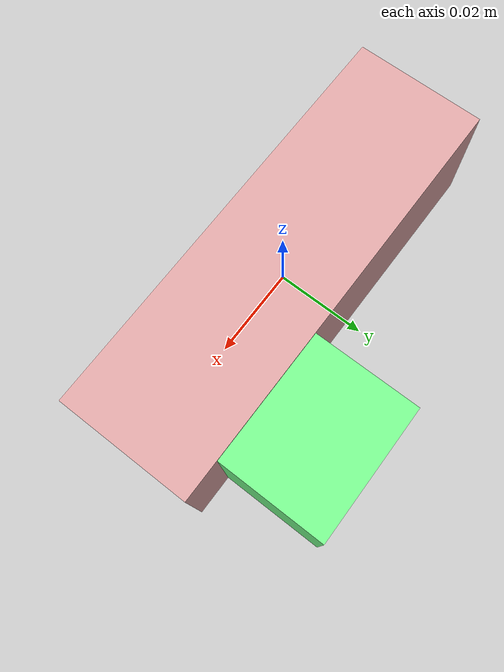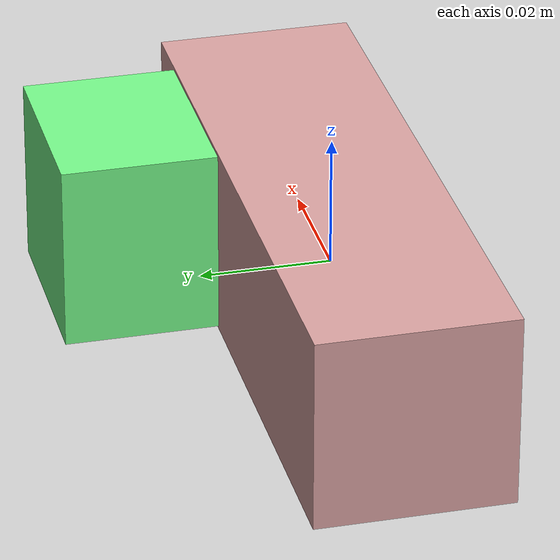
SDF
<sdf version="1.4"><world name="default"><model name="object0"><link name="link1"><pose>0 0 0 0 0 0</pose><inertial><pose>0 0 0 0 0 0</pose><mass>0.05237422210953381</mass><inertia><ixx>7.856133316430072e-06</ixx><ixy>0</ixy><iyy>4.498476211450053e-05</iyy><ixz>0</ixz><iyz>0</iyz><izz>4.498476211450053e-05</izz></inertia></inertial><visual name="link1_visual"><pose>0 0  0 0 0 0</pose><geometry><box><size>0.0969893002028404 0.03 0.03</size></box></geometry><material><diffuse>0.8495322713499474 0.6360155559688317 0.6354146702416341 1</diffuse></material></visual><collision><pose>0 0  0 0 0 0</pose><geometry><box><size>0.0969893002028404 0.03 0.03</size></box></geometry></collision></link><link name="link2"><pose>0.024487168080474096 0.021918538294318963 0 0 0 0</pose><inertial><pose>0 0 0 0 0 0</pose><mass>0.018199861710425043</mass><inertia><ixx>2.99830949542777e-06</ixx><ixy>0</ixy><iyy>2.6404966031541664e-06</iyy><ixz>0</ixz><iyz>0</iyz><izz>3.0877921488373605e-06</izz></inertia></inertial><visual name="link2_visual"><pose>0 0  0 0 0 0</pose><geometry><box><size>0.03 0.03370344761189823 0.028999999999999998</size></box></geometry><material><diffuse>0.4608484509937887 0.9753773776990304 0.5405652159106895 1</diffuse></material></visual><collision><pose>0 0  0 0 0 0</pose><geometry><box><size>0.03 0.03370344761189823 0.028999999999999998</size></box></geometry></collision></link><joint name="link_joint_0" type="fixed"><parent>link1</parent><child>link2</child><pose>0 0 0 0 0 0</pose><axis><xyz>0 0 1</xyz></axis></joint></model></world></sdf>
